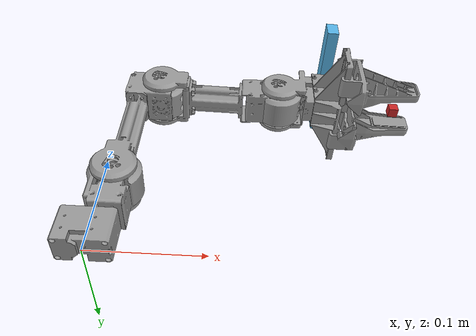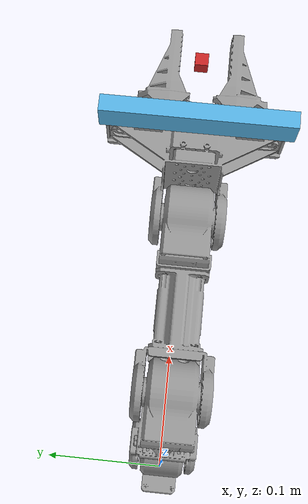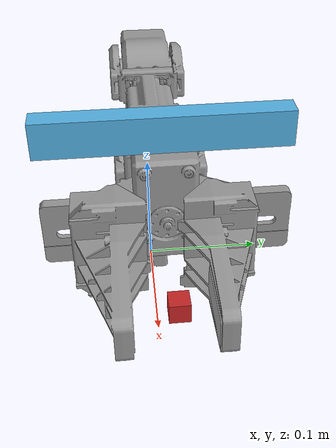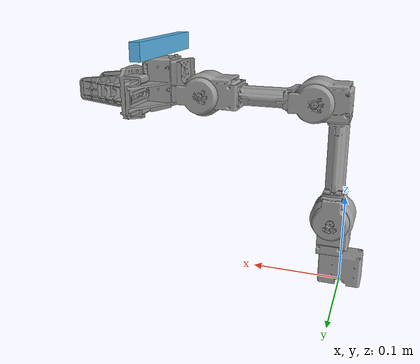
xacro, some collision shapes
<?xml version="1.0"?>
<!-- Open_Manipulator Chain -->
<robot name="open_manipulator" xmlns:xacro="http://ros.org/wiki/xacro">

  <!-- Import all Gazebo-customization elements, including Gazebo colors -->
  <xacro:include filename="$(find open_manipulator_gazebo_potman)/urdf/open_manipulator_realsense.gazebo.xacro" />
  <!-- Import Rviz colors -->
  <xacro:include filename="$(find open_manipulator_gazebo_potman)/urdf/materials.xacro" />

  <!-- Transmission macro -->
  <xacro:macro name="SimpleTransmission" params="joint n">
    <transmission name="tran${n}">
      <type>transmission_interface/SimpleTransmission</type>
      <joint name="${joint}">
        <hardwareInterface>hardware_interface/EffortJointInterface</hardwareInterface>
      </joint>
      <actuator name="motor${n}">
        <hardwareInterface>hardware_interface/EffortJointInterface</hardwareInterface>
        <mechanicalReduction>1</mechanicalReduction>
      </actuator>
    </transmission>
  </xacro:macro>

  <!-- World -->
  <link name="world">
  </link>

  <!-- World fixed joint-->
  <joint name="world_fixed" type="fixed">
    <origin xyz="0 0 0" rpy="0 0 0"/>
    <parent link="world"/>
    <child link="link1"/>
  </joint>

  <!-- Link 1 -->
  <link name="link1">
    <visual>
      <origin xyz="0 0 0" rpy="0 0 0"/>
      <geometry>
        <mesh filename="package://open_manipulator_description/meshes/chain_link1.stl" scale="0.001 0.001 0.001"/>
      </geometry>
      <material name="grey"/>
    </visual>

    <collision>
      <origin xyz="0 0 0" rpy="0 0 0"/>
      <geometry>
        <mesh filename="package://open_manipulator_description/meshes/chain_link1.stl" scale="0.001 0.001 0.001"/>
      </geometry>
    </collision>

     <inertial>
      <origin xyz="3.0876154e-04 0.0000000e+00 -1.2176461e-04" />
      <mass value="7.9119962e-02" />
      <inertia ixx="1.2505234e-05" ixy="0.0" ixz="-1.7855208e-07"
               iyy="2.1898364e-05" iyz="0.0"
               izz="1.9267361e-05" />
    </inertial>
  </link>

  <!-- Joint 1 -->
  <joint name="joint1" type="revolute">
    <parent link="link1"/>
    <child link="link2"/>
    <origin xyz="0.012 0.0 0.017" rpy="0 0 0"/>
    <axis xyz="0 0 1"/>
    <limit velocity="4.8" effort="1" lower="${-pi*0.9}" upper="${pi*0.9}" />
  </joint>

  <!-- Transmission 1 -->
  <xacro:SimpleTransmission n="1" joint="joint1" />

  <!--  Link 2 -->
  <link name="link2">
    <visual>
      <origin xyz="0 0 0.019" rpy="0 0 0"/>
      <geometry>
        <mesh filename="package://open_manipulator_description/meshes/chain_link2.stl" scale="0.001 0.001 0.001"/>
      </geometry>
      <material name="grey"/>
    </visual>

    <collision>
      <origin xyz="0 0 0.019" rpy="0 0 0"/>
      <geometry>
        <mesh filename="package://open_manipulator_description/meshes/chain_link2.stl" scale="0.001 0.001 0.001"/>
      </geometry>
    </collision>

     <inertial>
      <origin xyz="-3.0184870e-04 5.4043684e-04 ${0.018 + 2.9433464e-02}" />
      <mass value="9.8406837e-02" />
      <inertia ixx="3.4543422e-05" ixy="-1.6031095e-08" ixz="-3.8375155e-07"
               iyy="3.2689329e-05" iyz="2.8511935e-08"
               izz="1.8850320e-05" />
    </inertial>
  </link>

  <!--  Joint 2 -->
  <joint name="joint2" type="revolute">
    <parent link="link2"/>
    <child link="link3"/>
    <origin xyz="0.0 0.0 0.0595" rpy="0 0 0"/>
    <axis xyz="0 1 0"/>
    <limit velocity="4.8" effort="1" lower="${-pi*0.57}" upper="${pi*0.5}" />
  </joint>

  <!-- Transmission 2 -->
  <xacro:SimpleTransmission n="2" joint="joint2" />

  <!--  Link 3 -->
  <link name="link3">
    <visual>
      <origin xyz="0 0 0" rpy="0 0 0"/>
      <geometry>
        <mesh filename="package://open_manipulator_description/meshes/chain_link3.stl" scale="0.001 0.001 0.001"/>
      </geometry>
      <material name="grey"/>
    </visual>

    <collision>
      <origin xyz="0 0 0" rpy="0 0 0"/>
      <geometry>
        <mesh filename="package://open_manipulator_description/meshes/chain_link3.stl" scale="0.001 0.001 0.001"/>
      </geometry>
    </collision>

     <inertial>
      <origin xyz="1.0308393e-02 3.7743363e-04 1.0170197e-01" />
      <mass value="1.3850917e-01" />
      <inertia ixx="3.3055381e-04" ixy="-9.7940978e-08" ixz="-3.8505711e-05"
               iyy="3.4290447e-04" iyz="-1.5717516e-06"
               izz="6.0346498e-05" />
    </inertial>
  </link>

  <!--  Joint 3 -->
  <joint name="joint3" type="revolute">
    <parent link="link3"/>
    <child link="link4"/>
    <origin xyz="0.024 0 0.128" rpy="0 0 0"/>
    <axis xyz="0 1 0"/>
    <limit velocity="4.8" effort="1" lower="${-pi*0.3}" upper="${pi*0.44}" />
  </joint>

  <!-- Transmission 3 -->
  <xacro:SimpleTransmission n="3" joint="joint3" />

  <!--  Link 4 -->
  <link name="link4">
    <visual>
      <origin xyz="0 0 0" rpy="0 0 0"/>
      <geometry>
        <mesh filename="package://open_manipulator_description/meshes/chain_link4.stl" scale="0.001 0.001 0.001"/>
      </geometry>
      <material name="grey"/>
    </visual>

    <collision>
      <origin xyz="0 0 0" rpy="0 0 0"/>
      <geometry>
        <mesh filename="package://open_manipulator_description/meshes/chain_link4.stl" scale="0.001 0.001 0.001"/>
      </geometry>
    </collision>

     <inertial>
      <origin xyz="9.0909590e-02 3.8929816e-04 2.2413279e-04" />
      <mass value="1.3274562e-01" />
      <inertia ixx="3.0654178e-05" ixy="-1.2764155e-06" ixz="-2.6874417e-07"
               iyy="2.4230292e-04" iyz="1.1559550e-08"
               izz="2.5155057e-04" />
    </inertial>
  </link>

  <!--  Joint 4 -->
  <joint name="joint4" type="revolute">
    <parent link="link4"/>
    <child link="link5"/>
    <origin xyz="0.124 0.0 0.0" rpy="0 0 0"/>
    <axis xyz="0 1 0"/>
    <limit velocity="4.8" effort="1" lower="${-pi*0.57}" upper="${pi*0.65}" />
  </joint>

  <!-- Transmission 4 -->
  <xacro:SimpleTransmission n="4" joint="joint4" />

  <!--  Link 5 -->
  <link name="link5">
    <visual>
      <origin xyz="0 0 0" rpy="0 0 0"/>
      <geometry>
        <mesh filename="package://open_manipulator_description/meshes/chain_link5.stl" scale="0.001 0.001 0.001"/>
      </geometry>
      <material name="grey"/>
    </visual>

    <collision>
      <origin xyz="0 0 0" rpy="0 0 0"/>
      <geometry>
        <mesh filename="package://open_manipulator_description/meshes/chain_link5.stl" scale="0.001 0.001 0.001"/>
      </geometry>
    </collision>

     <inertial>
      <origin xyz="4.4206755e-02 3.6839985e-07 8.9142216e-03" />
      <mass value="1.4327573e-01" />
      <inertia ixx="8.0870749e-05" ixy="0.0" ixz="-1.0157896e-06"
               iyy="7.5980465e-05" iyz="0.0"
               izz="9.3127351e-05" />
    </inertial>
  </link>

  <!--  Gripper link -->
  <link name="gripper_link">
    <visual>
      <origin xyz="0.0 0.0 0" rpy="0 0 0"/>
      <geometry>
        <mesh filename="package://open_manipulator_description/meshes/chain_link_grip_l.stl" scale="0.001 0.001 0.001"/>
      </geometry>
      <material name="grey"/>
    </visual>

    <collision>
      <origin xyz="0.0 0.0 0" rpy="0 0 0"/>
      <geometry>
        <mesh filename="package://open_manipulator_description/meshes/chain_link_grip_l.stl" scale="0.001 0.001 0.001"/>
      </geometry>
    </collision>

    <inertial>
      <origin xyz="0 0 0" />
      <mass value="0.017" />
      <inertia ixx="1.0e-03" ixy="0.0" ixz="0.0"
               iyy="1.0e-03" iyz="0.0"
               izz="1.0e-03" />
    </inertial>

  </link>

  <!--  Gripper joint -->
  <joint name="gripper" type="prismatic">
    <parent link="link5"/>
    <child link="gripper_link"/>
    <origin xyz="0.0817 0.021 0.0" rpy="0 0 0"/>
    <axis xyz="0 1 0"/>
    <limit velocity="4.8" effort="1" lower="-0.010" upper="0.019" />
  </joint>

  <!-- Transmission 5 -->
  <xacro:SimpleTransmission n="5" joint="gripper" />

  <!--  Gripper link sub -->
  <link name="gripper_link_sub">
    <visual>
      <origin xyz="0.0 -0.0 0" rpy="0 0 0"/>
      <geometry>
        <mesh filename="package://open_manipulator_description/meshes/chain_link_grip_r.stl" scale="0.001 0.001 0.001"/>
      </geometry>
      <material name="grey"/>
    </visual>

    <collision>
      <origin xyz="0.0 -0.0 0" rpy="0 0 0"/>
      <geometry>
        <mesh filename="package://open_manipulator_description/meshes/chain_link_grip_r.stl" scale="0.001 0.001 0.001"/>
      </geometry>
    </collision>

    <inertial>
      <origin xyz="0 0 0" />
      <mass value="0.017" />
      <inertia ixx="1.0e-03" ixy="0.0" ixz="0.0"
               iyy="1.0e-03" iyz="0.0"
               izz="1.0e-03" />
    </inertial>

  </link>

  <!--  Gripper joint sub -->
  <joint name="gripper_sub" type="prismatic">
    <parent link="link5"/>
    <child link="gripper_link_sub"/>
    <origin xyz="0.0817 -0.021 0" rpy="0 0 0"/>
    <axis xyz="0 -1 0"/>
    <limit velocity="4.8" effort="1" lower="-0.010" upper="0.019" />
    <mimic joint="gripper" multiplier="1"/>
  </joint>

  <!-- Transmission 6 -->
  <xacro:SimpleTransmission n="6" joint="gripper_sub" />

  <!-- end effector joint -->
  <joint name="end_effector_joint" type="fixed">
    <origin xyz="0.126 0.0 0.0" rpy="0 0 0"/>
    <parent link="link5"/>
    <child link="end_effector_link"/>
  </joint>

  <!-- end effector link -->
  <link name="end_effector_link">
    <visual>
      <origin xyz="0 0 0" rpy="0 0 0"/>
      <geometry>
        <box size="0.01 0.01 0.01" />
      </geometry>
      <material name="red"/>
     </visual>

    <inertial>
      <origin xyz="0.0 0.0 0.0" rpy="0 0 0"/>
      <mass value="0.001"/>
      <inertia ixx="1.0e-06" ixy="0.0" ixz="0.0" iyy="1.0e-06" iyz="0.0" izz="1.0e-06" />
    </inertial>
  </link>

  <joint name="camera_joint" type="fixed">
    <origin xyz="0.05 -0.065 0.043" rpy="0 0 0"/>
    <parent link="link5"/>
    <child link="camera_link"/>
  </joint>

  <link name="camera_link">
    <visual>
     <origin xyz="0 0 0" rpy="1.57 0 1.57"/>
      <geometry>
       <mesh filename="package://turtlebot3_description/meshes/sensors/r200.dae" />
      </geometry>
    </visual>
    <collision>
      <origin xyz="0.003 0.065 0.007" rpy="0 0 0"/>
      <geometry>
        <box size="0.012 0.132 0.020"/>
      </geometry>
    </collision>

    <!-- This inertial field needs doesn't contain reliable data!! -->
  </link>

  <xacro:property name="r200_cam_rgb_px" value="0.005"/>
  <xacro:property name="r200_cam_rgb_py" value="0.018"/>
  <xacro:property name="r200_cam_rgb_pz" value="0.013"/>
  <xacro:property name="r200_cam_depth_offset" value="0.01"/>

  <joint name="camera_rgb_joint" type="fixed">
    <origin xyz="${r200_cam_rgb_px} ${r200_cam_rgb_py} ${r200_cam_rgb_pz}" rpy="0 0 0"/>
    <parent link="camera_link"/>
    <child link="camera_rgb_frame"/>
  </joint>
  <link name="camera_rgb_frame"/>

  <joint name="camera_rgb_optical_joint" type="fixed">
    <origin xyz="0 0 0" rpy="-1.57 0 -1.57"/>
    <parent link="camera_rgb_frame"/>
    <child link="camera_rgb_optical_frame"/>
  </joint>
  <link name="camera_rgb_optical_frame"/>

  <joint name="camera_depth_joint" type="fixed">
    <origin xyz="${r200_cam_rgb_px} ${r200_cam_rgb_py + r200_cam_depth_offset} ${r200_cam_rgb_pz}" rpy="0 0 0"/>
    <parent link="camera_link"/>
    <child link="camera_depth_frame"/>
  </joint>
  <link name="camera_depth_frame"/>

  <joint name="camera_depth_optical_joint" type="fixed">
    <origin xyz="0 0 0" rpy="-1.57 0 -1.57"/>
    <parent link="camera_depth_frame"/>
    <child link="camera_depth_optical_frame"/>
  </joint>
  <link name="camera_depth_optical_frame"/>

</robot>
